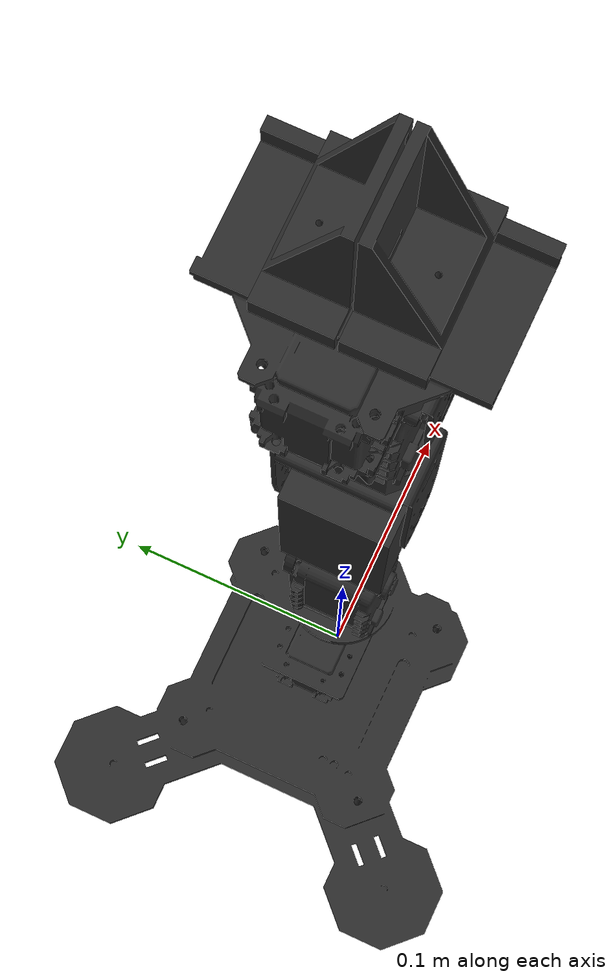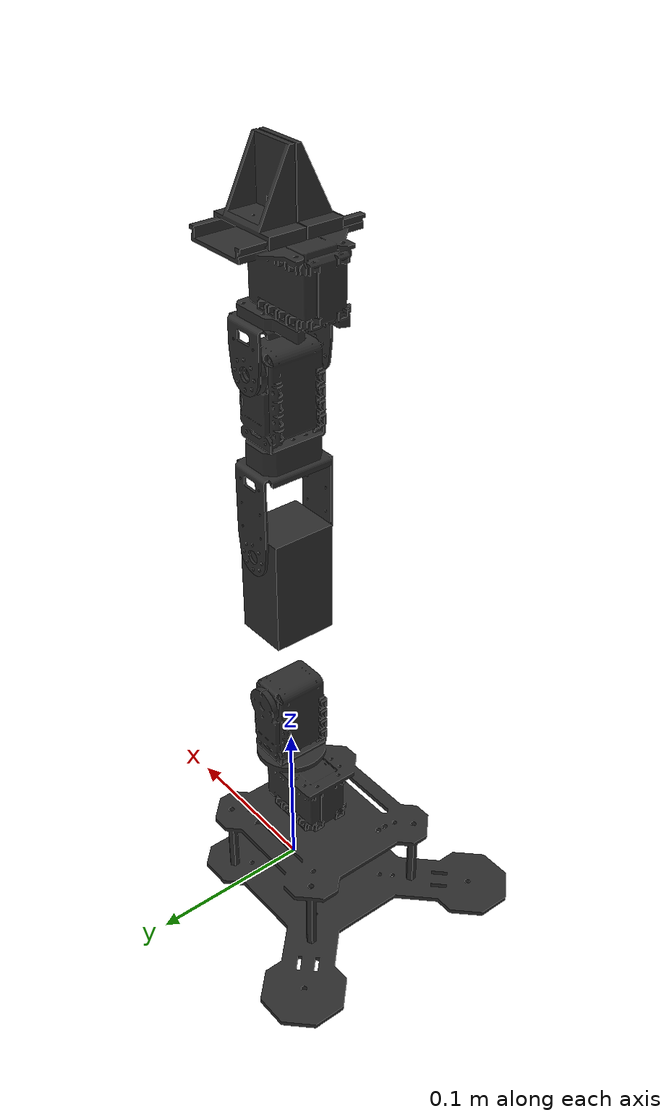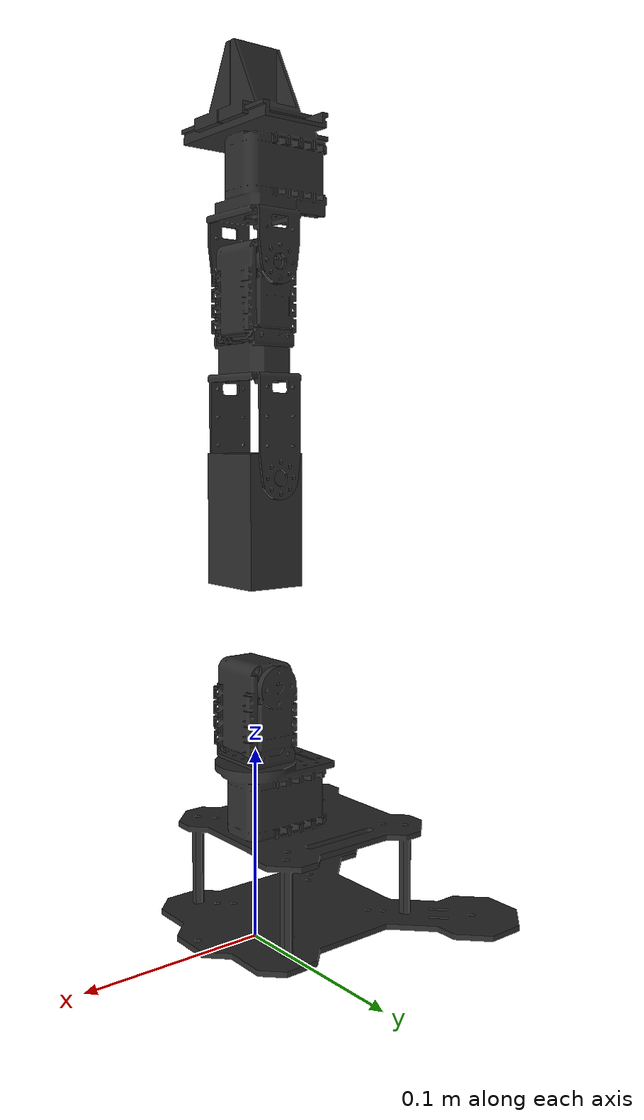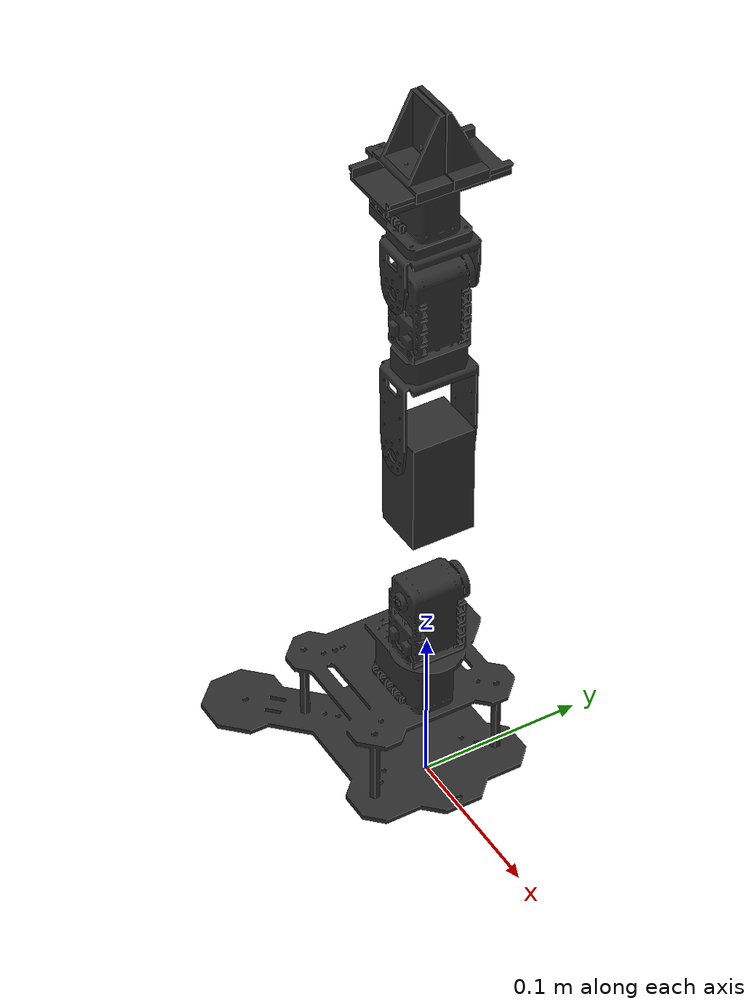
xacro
<?xml version="1.0"?>
<robot xmlns:xacro="http://www.ros.org/wiki/xacro" name="phantomx">

    <xacro:include filename="$(find phantomx)/urdf/links_joints.xacro"/>
    <xacro:include filename="$(find phantomx)/urdf/robot_parameters.xacro"/>

    <link name="world"/>

    <joint name="fixed" type="fixed">
        <parent link="world"/>
        <child link="${link0_name}"/>
        <origin xyz="0.0 0.0 0.0" rpy="0.0 0.0 0.0"/>
    </joint>

    <xacro:link_macro name="${link0_name}"
        origin_xyz="0 0 0"
        origin_rpy="0 0 0"
        meshfile_visual="package://phantomx/meshes/PincherBase.stl"
        meshfile_col="package://phantomx/meshes/PincherBase_col.stl"
        mass="1"
        ixx="0.002" ixy="0.0" ixz="-0.0004"
        iyy="0.002" iyz="0.0"
        izz="0.002"
    />

    <xacro:joint_macro name="${joint1_name}"
        type="revolute"
        parent_link="${link0_name}"
        child_link="${link1_name}"
        axis="0 0 1"
        lower="-3.14159"
        upper="3.14159"
        vel="50.0"
        effort="1000.0"
        origin_xyz="0 0 0.095"
        origin_rpy="0 0 0"
    />

    <xacro:link_macro name="${link1_name}"
        origin_xyz="0 0 0"
        origin_rpy="0 0 0"
        meshfile_visual="package://phantomx/meshes/ShoulderServo.stl"
        meshfile_col="package://phantomx/meshes/ShoulderServo_col.stl"
        mass="0.118"
        ixx="0.0001" ixy="0.0" ixz="0.0"
        iyy="0.0" iyz="0.0"
        izz="0.0"
    />

    <xacro:joint_macro name="${joint2_name}"
        type="revolute"
        parent_link="${link1_name}"
        child_link="${link2_name}"
        axis="0 1 0"
        lower="-3.14159"
        upper="3.14159"
        vel="50.0"
        effort="1000.0"
        origin_xyz="0 0 0.041"
        origin_rpy="0 0 0"
    />

    <xacro:link_macro name="${link2_name}"
        origin_xyz="0 0 0"
        origin_rpy="0 0 0"
        meshfile_visual="package://phantomx/meshes/LowerArm.stl"
        meshfile_col="package://phantomx/meshes/LowerArm_col.stl"
        mass="0.162"
        ixx="0.0003" ixy="0.0" ixz="0.0"
        iyy="0.0003" iyz="0.0"
        izz="0.0"
    />

    <xacro:joint_macro name="${joint3_name}"
        type="revolute"
        parent_link="${link2_name}"
        child_link="${link3_name}"
        axis="0 1 0"
        lower="-3.14159"
        upper="3.14159"
        vel="50.0"
        effort="1000.0"
        origin_xyz="0 0 0.107"
        origin_rpy="0 0 0"
    />

    <xacro:link_macro name="${link3_name}"
        origin_xyz="0 0 0"
        origin_rpy="0 0 0"
        meshfile_visual="package://phantomx/meshes/UpperArm.stl"
        meshfile_col="package://phantomx/meshes/UpperArm_col.stl"
        mass="0.162"
        ixx="0.0003" ixy="0.0" ixz="0.0"
        iyy="0.0003" iyz="0.0"
        izz="0.0"
    />

    <xacro:joint_macro name="${joint4_name}"
        type="revolute"
        parent_link="${link3_name}"
        child_link="${link4_name}"
        axis="0 1 0"
        lower="-3.14159"
        upper="3.14159"
        vel="50.0"
        effort="1000.0"
        origin_xyz="0 0 0.107"
        origin_rpy="0 0 0"
    />

    <xacro:link_macro name="${link4_name}"
        origin_xyz="0 0 0"
        origin_rpy="0 0 0"
        meshfile_visual="package://phantomx/meshes/GripperBody.stl"
        meshfile_col="package://phantomx/meshes/GripperBody_col.stl"
        mass="0.16"
        ixx="0.0001" ixy="0.0" ixz="0.0"
        iyy="0.0001" iyz="0.0"
        izz="0.0001"
    />

    <xacro:joint_macro name="${joint5_name}"
        type="prismatic"
        parent_link="${link4_name}"
        child_link="${link5_name}"
        axis="0 1 0"
        lower="-0.016"
        upper="0.0"
        vel="0.5"
        effort="1000.0"
        origin_xyz="0 -0.014 0.0718"
        origin_rpy="0 0 0"
    />

    <xacro:link_macro name="${link5_name}"
        origin_xyz="0 0 0"
        origin_rpy="0 0 0"
        meshfile_visual="package://phantomx/meshes/Finger.stl"
        meshfile_col="package://phantomx/meshes/Finger_col.stl"
        mass="0.018"
        ixx="0.0" ixy="0.0" ixz="0.0"
        iyy="0.0" iyz="0.0"
        izz="0.0"
    />

    <xacro:mimic_joint_macro name="${joint6_name}"
        type="prismatic"
        parent_link="${link4_name}"
        child_link="${link6_name}"
        axis="0 1 0"
        lower="-0.016"
        upper="0.0"
        vel="0.5"
        effort="1000.0"
        origin_xyz="0 0.014 0.0718"
        origin_rpy="0 0 3.14159"
        mimic_joint="${joint5_name}"
        m_multiplier="1.0"
        m_offset="0.0"
    />

    <xacro:link_macro name="${link6_name}"
        origin_xyz="0 0 0"
        origin_rpy="0 0 0"
        meshfile_visual="package://phantomx/meshes/Finger.stl"
        meshfile_col="package://phantomx/meshes/Finger_col.stl"
        mass="0.018"
        ixx="0.0" ixy="0.0" ixz="0.0"
        iyy="0.0" iyz="0.0"
        izz="0.0"
    />

    <xacro:create_noa name="NOA"
        origin_xyz="0 0 0.095"
        origin_rpy="0 0 0"
        parent="${link4_name}"
    />

</robot>

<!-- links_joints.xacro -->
<robot xmlns:xacro="http://www.ros.org/wiki/xacro">

    <!-- links -->
    <xacro:macro name="link_macro" params="name origin_xyz origin_rpy meshfile_visual meshfile_col mass ixx ixy ixz iyy iyz izz">
        <link name="${name}">
            <inertial>
                <origin xyz="${origin_xyz}" rpy="${origin_rpy}"/>
                <mass value="${mass}"/>
                <inertia ixx="${ixx}" ixy="${ixy}" ixz="${ixz}" iyy="${iyy}" iyz="${iyz}" izz="${izz}"/>
            </inertial>
            <visual>
                <origin xyz="${origin_xyz}" rpy="${origin_rpy}"/>
                <geometry>
                    <mesh filename="${meshfile_visual}"/>
                </geometry>
                <material name="gray">
                    <color rgba="${44/255} ${44/255} ${44/255} 1.0"/>
                </material>
            </visual>
            <collision>
                <origin xyz="${origin_xyz}" rpy="${origin_rpy}"/>
                <geometry>
                    <mesh filename="${meshfile_col}"/>
                </geometry>
            </collision>
        </link>
        <gazebo reference="${name}">
            <material>Gazebo/DarkGrey</material>
        </gazebo>
    </xacro:macro>

    <!-- joints without mimic -->
    <xacro:macro name="joint_macro" params="name type parent_link child_link axis lower upper vel effort origin_xyz origin_rpy">
        <joint name="${name}" type="${type}">
            <parent link="${parent_link}"/>
            <child link="${child_link}"/>
            <axis xyz="${axis}"/>
            <limit lower="${lower}" upper="${upper}" velocity="${vel}" effort="${effort}"/>
            <origin xyz="${origin_xyz}" rpy="${origin_rpy}"/>
        </joint>
        <transmission name="trans_${name}">
            <type>transmission_interface/SimpleTransmission</type>
            <joint name="${name}">
                <hardwareInterface>hardware_interface/PositionJointInterface</hardwareInterface>
            </joint>
            <actuator name="motor_${name}">
                <mechanicalReduction>1</mechanicalReduction>
                <hardwareInterface>hardware_interface/PositionJointInterface</hardwareInterface>
            </actuator>
        </transmission>
    </xacro:macro>

    <!-- joints with mimic -->
    <xacro:macro name="mimic_joint_macro" params="name type parent_link child_link axis lower upper vel effort origin_xyz origin_rpy
    mimic_joint m_multiplier m_offset">
        <joint name="${name}" type="${type}">
            <parent link="${parent_link}"/>
            <child link="${child_link}"/>
            <axis xyz="${axis}"/>
            <limit lower="${lower}" upper="${upper}" velocity="${vel}" effort="${effort}"/>
            <origin xyz="${origin_xyz}" rpy="${origin_rpy}"/>
            <mimic joint="${mimic_joint}" multiplier="${m_multiplier}" offset="${m_offset}"/>
        </joint>
        <transmission name="trans_${name}">
            <type>transmission_interface/SimpleTransmission</type>
            <joint name="${name}">
                <hardwareInterface>hardware_interface/PositionJointInterface</hardwareInterface>
            </joint>
            <actuator name="motor_${name}">
                <mechanicalReduction>1</mechanicalReduction>
                <hardwareInterface>hardware_interface/PositionJointInterface</hardwareInterface>
            </actuator>
        </transmission>
    </xacro:macro>

    <!-- noa -->
    <xacro:macro name="create_noa" params="name origin_rpy origin_xyz parent">
        <link name="${name}">
        </link>
        <joint name="Tool_${name}" type="fixed">
            <origin rpy="${origin_rpy}" xyz="${origin_xyz}"/>
            <parent link="${parent}"/>
            <child link="${name}"/>
        </joint>
    </xacro:macro>

</robot>

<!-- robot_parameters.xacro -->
<robot xmlns:xacro="http://www.ros.org/wiki/xacro">

    <xacro:property name="link0_name" value="pincherBase"/>
    <xacro:property name="link1_name" value="shoulderServo"/>
    <xacro:property name="link2_name" value="lowerArm"/>
    <xacro:property name="link3_name" value="upperArm"/>
    <xacro:property name="link4_name" value="gripperBody"/>
    <xacro:property name="link5_name" value="leftFinger"/>
    <xacro:property name="link6_name" value="rightFinger"/>

    <xacro:property name="joint1_name" value="joint1"/>
    <xacro:property name="joint2_name" value="joint2"/>
    <xacro:property name="joint3_name" value="joint3"/>
    <xacro:property name="joint4_name" value="joint4"/>
    <xacro:property name="joint5_name" value="joint5"/>
    <xacro:property name="joint6_name" value="joint6"/>

</robot>
